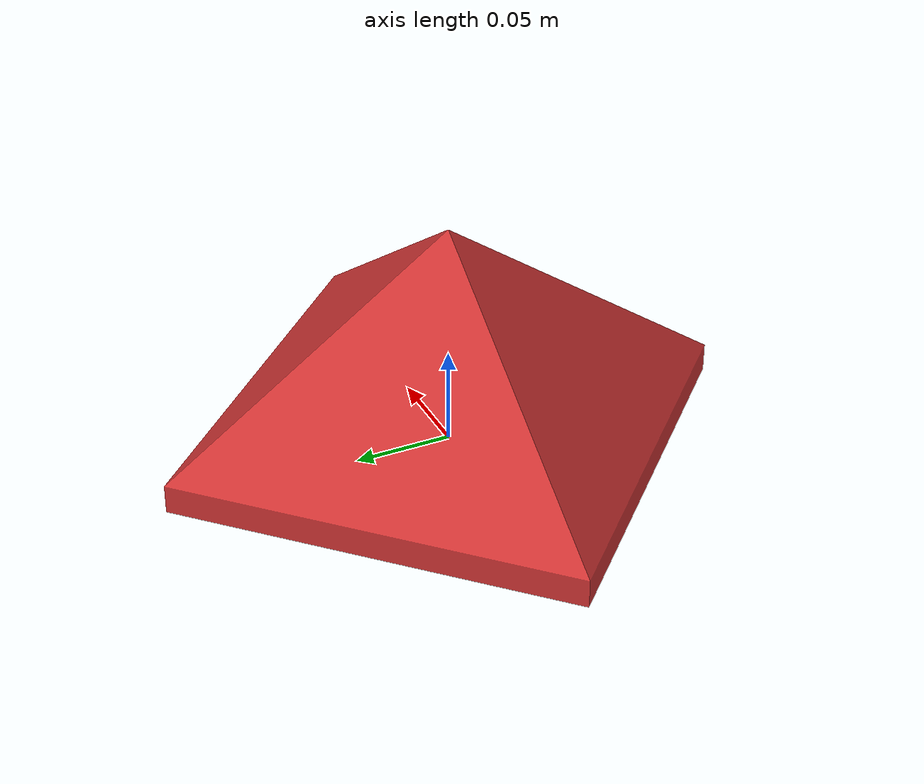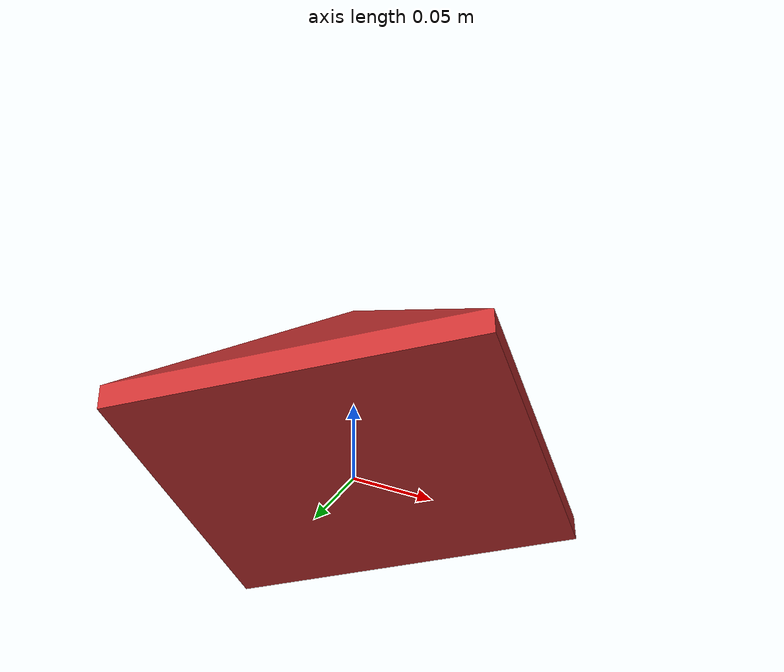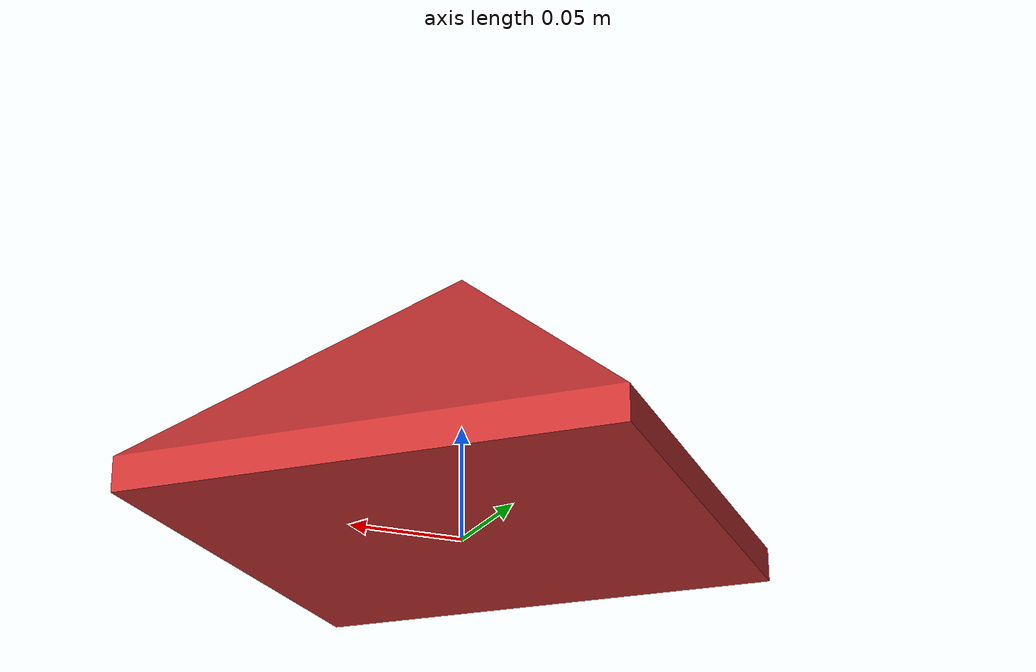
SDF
<?xml version="1.0"?>
<sdf version="1.7">
  <model name="hat_variant">
    <link name="hat_variant_link">
      <inertial>
        <mass>2.5</mass>
        <inertia>
          <ixx>0.208</ixx>
          <iyy>0.208</iyy>
          <izz>0.25</izz>
          <ixy>0.0</ixy>
          <ixz>0.0</ixz>
          <iyz>0.0</iyz>
        </inertia>
      </inertial>
      <visual name="hat_variant_visual">
        <geometry>
          <mesh>
            <uri>hat.obj</uri>
            <scale>0.15 0.15 0.15</scale>
          </mesh>
        </geometry>
        <material>
          <diffuse>0.8 0.2 0.2 1</diffuse>
          <ambient>0.3 0.1 0.1 1</ambient>
        </material>
      </visual>
    </link>
  </model>
</sdf>
